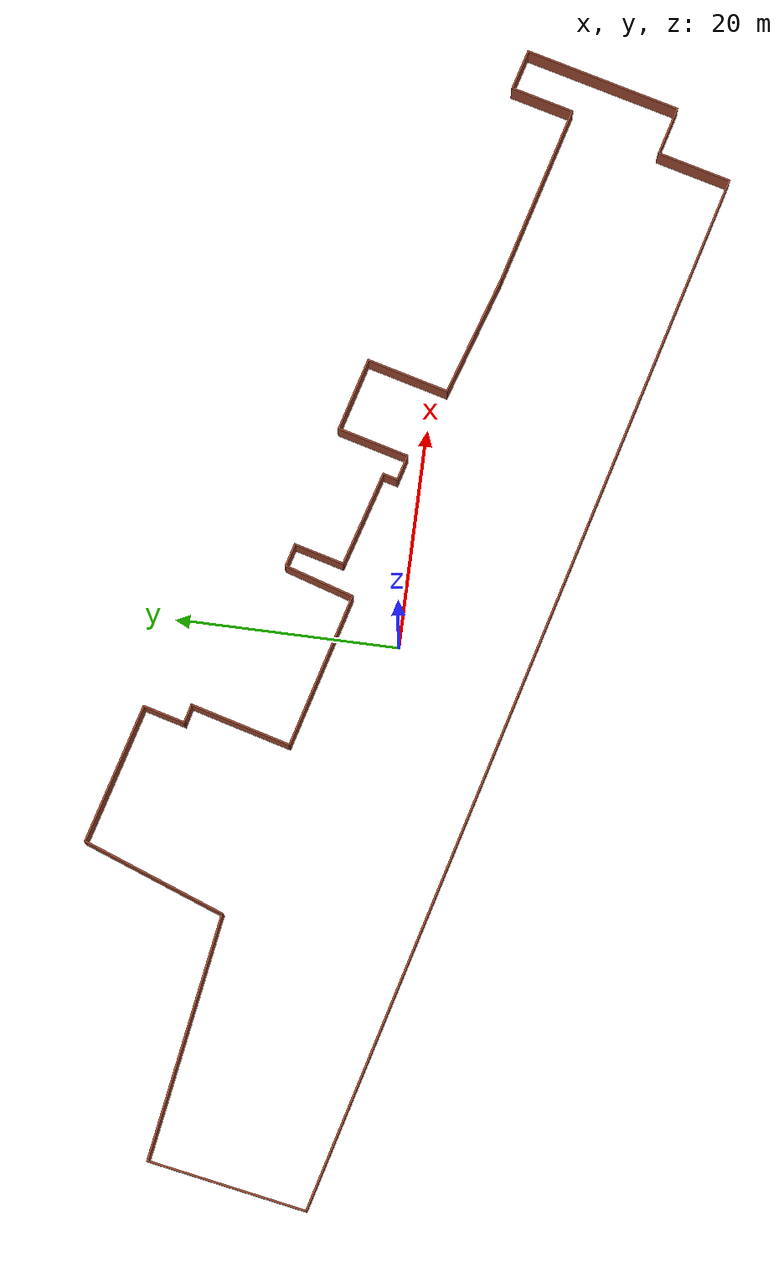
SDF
<?xml version='1.0'?>
<sdf version='1.6'>
  <model name='match_1'>
    <pose frame=''>3.22678 0.284331 0 0 -0 0</pose>
    <link name='Wall_10'>
      <collision name='Wall_10_Collision'>
        <geometry>
          <box>
            <size>1.8479 0.15 2.5</size>
          </box>
        </geometry>
        <pose frame=''>0 0 1.25 0 -0 0</pose>
      </collision>
      <visual name='Wall_10_Visual'>
        <pose frame=''>0 0 1.25 0 -0 0</pose>
        <geometry>
          <box>
            <size>1.8479 0.15 2.5</size>
          </box>
        </geometry>
        <material>
          <script>
            <uri>file://media/materials/scripts/gazebo.material</uri>
            <name>Gazebo/Bricks</name>
          </script>
          <ambient>1 1 1 1</ambient>
        </material>
      </visual>
      <pose frame=''>-11.8145 17.1978 0 0 0 -0.242284</pose>
    </link>
    <link name='Wall_11'>
      <collision name='Wall_11_Collision'>
        <geometry>
          <box>
            <size>9.44542 0.15 2.5</size>
          </box>
        </geometry>
        <pose frame=''>0 0 1.25 0 -0 0</pose>
      </collision>
      <visual name='Wall_11_Visual'>
        <pose frame=''>0 0 1.25 0 -0 0</pose>
        <geometry>
          <box>
            <size>9.44542 0.15 2.5</size>
          </box>
        </geometry>
        <material>
          <script>
            <uri>file://media/materials/scripts/gazebo.material</uri>
            <name>Gazebo/Bricks</name>
          </script>
          <ambient>1 1 1 1</ambient>
        </material>
      </visual>
      <pose frame=''>-12.2093 12.5091 0 0 0 -1.83618</pose>
    </link>
    <link name='Wall_12'>
      <collision name='Wall_12_Collision'>
        <geometry>
          <box>
            <size>14.5 0.15 2.5</size>
          </box>
        </geometry>
        <pose frame=''>0 0 1.25 0 -0 0</pose>
      </collision>
      <visual name='Wall_12_Visual'>
        <pose frame=''>0 0 1.25 0 -0 0</pose>
        <geometry>
          <box>
            <size>14.5 0.15 2.5</size>
          </box>
        </geometry>
        <material>
          <script>
            <uri>file://media/materials/scripts/gazebo.material</uri>
            <name>Gazebo/Bricks</name>
          </script>
          <ambient>1 1 1 1</ambient>
        </material>
      </visual>
      <pose frame=''>-6.49782 6.16705 0 0 0 -0.261799</pose>
    </link>
    <link name='Wall_13'>
      <collision name='Wall_13_Collision'>
        <geometry>
          <box>
            <size>6.65147 0.15 2.5</size>
          </box>
        </geometry>
        <pose frame=''>0 0 1.25 0 -0 0</pose>
      </collision>
      <visual name='Wall_13_Visual'>
        <pose frame=''>0 0 1.25 0 -0 0</pose>
        <geometry>
          <box>
            <size>6.65147 0.15 2.5</size>
          </box>
        </geometry>
        <material>
          <script>
            <uri>file://media/materials/scripts/gazebo.material</uri>
            <name>Gazebo/Bricks</name>
          </script>
          <ambient>1 1 1 1</ambient>
        </material>
      </visual>
      <pose frame=''>1.41418 7.40905 0 0 -0 1.26408</pose>
    </link>
    <link name='Wall_14'>
      <collision name='Wall_14_Collision'>
        <geometry>
          <box>
            <size>2.25 0.15 2.5</size>
          </box>
        </geometry>
        <pose frame=''>0 0 1.25 0 -0 0</pose>
      </collision>
      <visual name='Wall_14_Visual'>
        <pose frame=''>0 0 1.25 0 -0 0</pose>
        <geometry>
          <box>
            <size>2.25 0.15 2.5</size>
          </box>
        </geometry>
        <material>
          <script>
            <uri>file://media/materials/scripts/gazebo.material</uri>
            <name>Gazebo/Bricks</name>
          </script>
          <ambient>1 1 1 1</ambient>
        </material>
      </visual>
      <pose frame=''>3.40989 10.2363 0 0 0 -0.261799</pose>
    </link>
    <link name='Wall_15'>
      <collision name='Wall_15_Collision'>
        <geometry>
          <box>
            <size>4.75 0.15 2.5</size>
          </box>
        </geometry>
        <pose frame=''>0 0 1.25 0 -0 0</pose>
      </collision>
      <visual name='Wall_15_Visual'>
        <pose frame=''>0 0 1.25 0 -0 0</pose>
        <geometry>
          <box>
            <size>4.75 0.15 2.5</size>
          </box>
        </geometry>
        <material>
          <script>
            <uri>file://media/materials/scripts/gazebo.material</uri>
            <name>Gazebo/Bricks</name>
          </script>
          <ambient>1 1 1 1</ambient>
        </material>
      </visual>
      <pose frame=''>3.82883 7.74293 0 0 0 -1.8326</pose>
    </link>
    <link name='Wall_16'>
      <collision name='Wall_16_Collision'>
        <geometry>
          <box>
            <size>9.04458 0.15 2.5</size>
          </box>
        </geometry>
        <pose frame=''>0 0 1.25 0 -0 0</pose>
      </collision>
      <visual name='Wall_16_Visual'>
        <pose frame=''>0 0 1.25 0 -0 0</pose>
        <geometry>
          <box>
            <size>9.04458 0.15 2.5</size>
          </box>
        </geometry>
        <material>
          <script>
            <uri>file://media/materials/scripts/gazebo.material</uri>
            <name>Gazebo/Bricks</name>
          </script>
          <ambient>1 1 1 1</ambient>
        </material>
      </visual>
      <pose frame=''>7.5066 4.28869 0 0 0 -0.280837</pose>
    </link>
    <link name='Wall_17'>
      <collision name='Wall_17_Collision'>
        <geometry>
          <box>
            <size>1.5 0.15 2.5</size>
          </box>
        </geometry>
        <pose frame=''>0 0 1.25 0 -0 0</pose>
      </collision>
      <visual name='Wall_17_Visual'>
        <pose frame=''>0 0 1.25 0 -0 0</pose>
        <geometry>
          <box>
            <size>1.5 0.15 2.5</size>
          </box>
        </geometry>
        <material>
          <script>
            <uri>file://media/materials/scripts/gazebo.material</uri>
            <name>Gazebo/Bricks</name>
          </script>
          <ambient>1 1 1 1</ambient>
        </material>
      </visual>
      <pose frame=''>11.605 2.40408 0 0 0 -1.8326</pose>
    </link>
    <link name='Wall_18'>
      <collision name='Wall_18_Collision'>
        <geometry>
          <box>
            <size>2.5 0.15 2.5</size>
          </box>
        </geometry>
        <pose frame=''>0 0 1.25 0 -0 0</pose>
      </collision>
      <visual name='Wall_18_Visual'>
        <pose frame=''>0 0 1.25 0 -0 0</pose>
        <geometry>
          <box>
            <size>2.5 0.15 2.5</size>
          </box>
        </geometry>
        <material>
          <script>
            <uri>file://media/materials/scripts/gazebo.material</uri>
            <name>Gazebo/Bricks</name>
          </script>
          <ambient>1 1 1 1</ambient>
        </material>
      </visual>
      <pose frame=''>12.5652 1.44796 0 0 0 -0.261799</pose>
    </link>
    <link name='Wall_19'>
      <collision name='Wall_19_Collision'>
        <geometry>
          <box>
            <size>6.75 0.15 2.5</size>
          </box>
        </geometry>
        <pose frame=''>0 0 1.25 0 -0 0</pose>
      </collision>
      <visual name='Wall_19_Visual'>
        <pose frame=''>0 0 1.25 0 -0 0</pose>
        <geometry>
          <box>
            <size>6.75 0.15 2.5</size>
          </box>
        </geometry>
        <material>
          <script>
            <uri>file://media/materials/scripts/gazebo.material</uri>
            <name>Gazebo/Bricks</name>
          </script>
          <ambient>1 1 1 1</ambient>
        </material>
      </visual>
      <pose frame=''>14.5543 4.33141 0 0 -0 1.309</pose>
    </link>
    <link name='Wall_20'>
      <collision name='Wall_20_Collision'>
        <geometry>
          <box>
            <size>7 0.15 2.5</size>
          </box>
        </geometry>
        <pose frame=''>0 0 1.25 0 -0 0</pose>
      </collision>
      <visual name='Wall_20_Visual'>
        <pose frame=''>0 0 1.25 0 -0 0</pose>
        <geometry>
          <box>
            <size>7 0.15 2.5</size>
          </box>
        </geometry>
        <material>
          <script>
            <uri>file://media/materials/scripts/gazebo.material</uri>
            <name>Gazebo/Bricks</name>
          </script>
          <ambient>1 1 1 1</ambient>
        </material>
      </visual>
      <pose frame=''>18.7167 6.63251 0 0 0 -0.261799</pose>
    </link>
    <link name='Wall_21'>
      <collision name='Wall_21_Collision'>
        <geometry>
          <box>
            <size>7.75 0.15 2.5</size>
          </box>
        </geometry>
        <pose frame=''>0 0 1.25 0 -0 0</pose>
      </collision>
      <visual name='Wall_21_Visual'>
        <pose frame=''>0 0 1.25 0 -0 0</pose>
        <geometry>
          <box>
            <size>7.75 0.15 2.5</size>
          </box>
        </geometry>
        <material>
          <script>
            <uri>file://media/materials/scripts/gazebo.material</uri>
            <name>Gazebo/Bricks</name>
          </script>
          <ambient>1 1 1 1</ambient>
        </material>
      </visual>
      <pose frame=''>21.0415 2.07553 0 0 0 -1.8326</pose>
    </link>
    <link name='Wall_22'>
      <collision name='Wall_22_Collision'>
        <geometry>
          <box>
            <size>11.5551 0.15 2.5</size>
          </box>
        </geometry>
        <pose frame=''>0 0 1.25 0 -0 0</pose>
      </collision>
      <visual name='Wall_22_Visual'>
        <pose frame=''>0 0 1.25 0 -0 0</pose>
        <geometry>
          <box>
            <size>11.5551 0.15 2.5</size>
          </box>
        </geometry>
        <material>
          <script>
            <uri>file://media/materials/scripts/gazebo.material</uri>
            <name>Gazebo/Bricks</name>
          </script>
          <ambient>1 1 1 1</ambient>
        </material>
      </visual>
      <pose frame=''>25.4868 -3.34045 0 0 0 -0.311079</pose>
    </link>
    <link name='Wall_23'>
      <collision name='Wall_23_Collision'>
        <geometry>
          <box>
            <size>17.5 0.15 2.5</size>
          </box>
        </geometry>
        <pose frame=''>0 0 1.25 0 -0 0</pose>
      </collision>
      <visual name='Wall_23_Visual'>
        <pose frame=''>0 0 1.25 0 -0 0</pose>
        <geometry>
          <box>
            <size>17.5 0.15 2.5</size>
          </box>
        </geometry>
        <material>
          <script>
            <uri>file://media/materials/scripts/gazebo.material</uri>
            <name>Gazebo/Bricks</name>
          </script>
          <ambient>1 1 1 1</ambient>
        </material>
      </visual>
      <pose frame=''>39.2951 -7.33118 0 0 0 -0.261799</pose>
    </link>
    <link name='Wall_24'>
      <collision name='Wall_24_Collision'>
        <geometry>
          <box>
            <size>6 0.15 2.5</size>
          </box>
        </geometry>
        <pose frame=''>0 0 1.25 0 -0 0</pose>
      </collision>
      <visual name='Wall_24_Visual'>
        <pose frame=''>0 0 1.25 0 -0 0</pose>
        <geometry>
          <box>
            <size>6 0.15 2.5</size>
          </box>
        </geometry>
        <material>
          <script>
            <uri>file://media/materials/scripts/gazebo.material</uri>
            <name>Gazebo/Bricks</name>
          </script>
          <ambient>1 1 1 1</ambient>
        </material>
      </visual>
      <pose frame=''>48.4315 -6.7511 0 0 -0 1.309</pose>
    </link>
    <link name='Wall_25'>
      <collision name='Wall_25_Collision'>
        <geometry>
          <box>
            <size>4 0.15 2.5</size>
          </box>
        </geometry>
        <pose frame=''>0 0 1.25 0 -0 0</pose>
      </collision>
      <visual name='Wall_25_Visual'>
        <pose frame=''>0 0 1.25 0 -0 0</pose>
        <geometry>
          <box>
            <size>4 0.15 2.5</size>
          </box>
        </geometry>
        <material>
          <script>
            <uri>file://media/materials/scripts/gazebo.material</uri>
            <name>Gazebo/Bricks</name>
          </script>
          <ambient>1 1 1 1</ambient>
        </material>
      </visual>
      <pose frame=''>51.048 -4.42399 0 0 0 -0.261799</pose>
    </link>
    <link name='Wall_26'>
      <collision name='Wall_26_Collision'>
        <geometry>
          <box>
            <size>14.75 0.15 2.5</size>
          </box>
        </geometry>
        <pose frame=''>0 0 1.25 0 -0 0</pose>
      </collision>
      <visual name='Wall_26_Visual'>
        <pose frame=''>0 0 1.25 0 -0 0</pose>
        <geometry>
          <box>
            <size>14.75 0.15 2.5</size>
          </box>
        </geometry>
        <material>
          <script>
            <uri>file://media/materials/scripts/gazebo.material</uri>
            <name>Gazebo/Bricks</name>
          </script>
          <ambient>1 1 1 1</ambient>
        </material>
      </visual>
      <pose frame=''>51.018 -11.9735 0 0 0 -1.8326</pose>
    </link>
    <link name='Wall_27'>
      <collision name='Wall_27_Collision'>
        <geometry>
          <box>
            <size>4.75 0.15 2.5</size>
          </box>
        </geometry>
        <pose frame=''>0 0 1.25 0 -0 0</pose>
      </collision>
      <visual name='Wall_27_Visual'>
        <pose frame=''>0 0 1.25 0 -0 0</pose>
        <geometry>
          <box>
            <size>4.75 0.15 2.5</size>
          </box>
        </geometry>
        <material>
          <script>
            <uri>file://media/materials/scripts/gazebo.material</uri>
            <name>Gazebo/Bricks</name>
          </script>
          <ambient>1 1 1 1</ambient>
        </material>
      </visual>
      <pose frame=''>46.907 -18.4295 0 0 -0 2.87979</pose>
    </link>
    <link name='Wall_28'>
      <collision name='Wall_28_Collision'>
        <geometry>
          <box>
            <size>7 0.15 2.5</size>
          </box>
        </geometry>
        <pose frame=''>0 0 1.25 0 -0 0</pose>
      </collision>
      <visual name='Wall_28_Visual'>
        <pose frame=''>0 0 1.25 0 -0 0</pose>
        <geometry>
          <box>
            <size>7 0.15 2.5</size>
          </box>
        </geometry>
        <material>
          <script>
            <uri>file://media/materials/scripts/gazebo.material</uri>
            <name>Gazebo/Bricks</name>
          </script>
          <ambient>1 1 1 1</ambient>
        </material>
      </visual>
      <pose frame=''>43.7989 -21.1425 0 0 0 -1.8326</pose>
    </link>
    <link name='Wall_29'>
      <collision name='Wall_29_Collision'>
        <geometry>
          <box>
            <size>34.5 0.15 2.5</size>
          </box>
        </geometry>
        <pose frame=''>0 0 1.25 0 -0 0</pose>
      </collision>
      <visual name='Wall_29_Visual'>
        <pose frame=''>0 0 1.25 0 -0 0</pose>
        <geometry>
          <box>
            <size>34.5 0.15 2.5</size>
          </box>
        </geometry>
        <material>
          <script>
            <uri>file://media/materials/scripts/gazebo.material</uri>
            <name>Gazebo/Bricks</name>
          </script>
          <ambient>1 1 1 1</ambient>
        </material>
      </visual>
      <pose frame=''>26.3227 -20.0055 0 0 -0 2.87979</pose>
    </link>
    <link name='Wall_30'>
      <collision name='Wall_30_Collision'>
        <geometry>
          <box>
            <size>65 0.15 2.5</size>
          </box>
        </geometry>
        <pose frame=''>0 0 1.25 0 -0 0</pose>
      </collision>
      <visual name='Wall_30_Visual'>
        <pose frame=''>0 0 1.25 0 -0 0</pose>
        <geometry>
          <box>
            <size>65 0.15 2.5</size>
          </box>
        </geometry>
        <material>
          <script>
            <uri>file://media/materials/scripts/gazebo.material</uri>
            <name>Gazebo/Bricks</name>
          </script>
          <ambient>1 1 1 1</ambient>
        </material>
      </visual>
      <pose frame=''>-21.5872 -7.16812 0 0 -0 2.87979</pose>
    </link>
    <link name='Wall_31'>
      <collision name='Wall_31_Collision'>
        <geometry>
          <box>
            <size>14.2936 0.15 2.5</size>
          </box>
        </geometry>
        <pose frame=''>0 0 1.25 0 -0 0</pose>
      </collision>
      <visual name='Wall_31_Visual'>
        <pose frame=''>0 0 1.25 0 -0 0</pose>
        <geometry>
          <box>
            <size>14.2936 0.15 2.5</size>
          </box>
        </geometry>
        <material>
          <script>
            <uri>file://media/materials/scripts/gazebo.material</uri>
            <name>Gazebo/Bricks</name>
          </script>
          <ambient>1 1 1 1</ambient>
        </material>
      </visual>
      <pose frame=''>-51.6829 8.18908 0 0 -0 1.39676</pose>
    </link>
    <link name='Wall_6'>
      <collision name='Wall_6_Collision'>
        <geometry>
          <box>
            <size>22.0747 0.15 2.5</size>
          </box>
        </geometry>
        <pose frame=''>0 0 1.25 0 -0 0</pose>
      </collision>
      <visual name='Wall_6_Visual'>
        <pose frame=''>0 0 1.25 0 -0 0</pose>
        <geometry>
          <box>
            <size>22.0747 0.15 2.5</size>
          </box>
        </geometry>
        <material>
          <script>
            <uri>file://media/materials/scripts/gazebo.material</uri>
            <name>Gazebo/Bricks</name>
          </script>
          <ambient>1 1 1 1</ambient>
        </material>
      </visual>
      <pose frame=''>-39.6253 13.4751 0 0 0 -0.153766</pose>
    </link>
    <link name='Wall_7'>
      <collision name='Wall_7_Collision'>
        <geometry>
          <box>
            <size>13.6582 0.15 2.5</size>
          </box>
        </geometry>
        <pose frame=''>0 0 1.25 0 -0 0</pose>
      </collision>
      <visual name='Wall_7_Visual'>
        <pose frame=''>0 0 1.25 0 -0 0</pose>
        <geometry>
          <box>
            <size>13.6582 0.15 2.5</size>
          </box>
        </geometry>
        <material>
          <script>
            <uri>file://media/materials/scripts/gazebo.material</uri>
            <name>Gazebo/Bricks</name>
          </script>
          <ambient>1 1 1 1</ambient>
        </material>
      </visual>
      <pose frame=''>-26.4233 18.1211 0 0 -0 1.21242</pose>
    </link>
    <link name='Wall_8'>
      <collision name='Wall_8_Collision'>
        <geometry>
          <box>
            <size>13 0.15 2.5</size>
          </box>
        </geometry>
        <pose frame=''>0 0 1.25 0 -0 0</pose>
      </collision>
      <visual name='Wall_8_Visual'>
        <pose frame=''>0 0 1.25 0 -0 0</pose>
        <geometry>
          <box>
            <size>13 0.15 2.5</size>
          </box>
        </geometry>
        <material>
          <script>
            <uri>file://media/materials/scripts/gazebo.material</uri>
            <name>Gazebo/Bricks</name>
          </script>
          <ambient>1 1 1 1</ambient>
        </material>
      </visual>
      <pose frame=''>-17.8483 22.7832 0 0 0 -0.261799</pose>
    </link>
    <link name='Wall_9'>
      <collision name='Wall_9_Collision'>
        <geometry>
          <box>
            <size>4 0.15 2.5</size>
          </box>
        </geometry>
        <pose frame=''>0 0 1.25 0 -0 0</pose>
      </collision>
      <visual name='Wall_9_Visual'>
        <pose frame=''>0 0 1.25 0 -0 0</pose>
        <geometry>
          <box>
            <size>4 0.15 2.5</size>
          </box>
        </geometry>
        <material>
          <script>
            <uri>file://media/materials/scripts/gazebo.material</uri>
            <name>Gazebo/Bricks</name>
          </script>
          <ambient>1 1 1 1</ambient>
        </material>
      </visual>
      <pose frame=''>-12.1404 19.2608 0 0 0 -1.8326</pose>
    </link>
    <static>1</static>
  </model>
</sdf>
